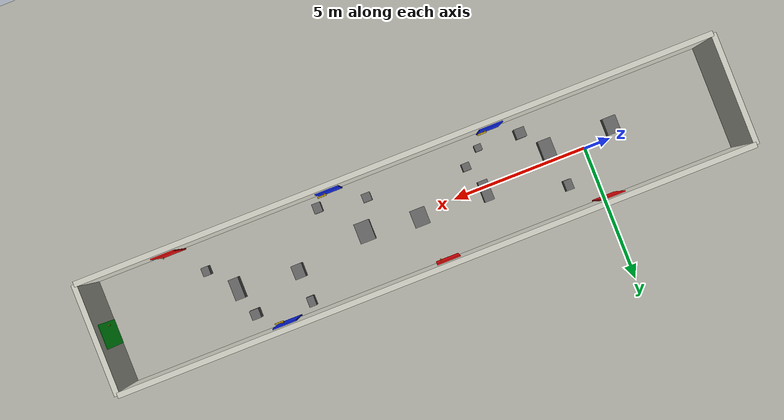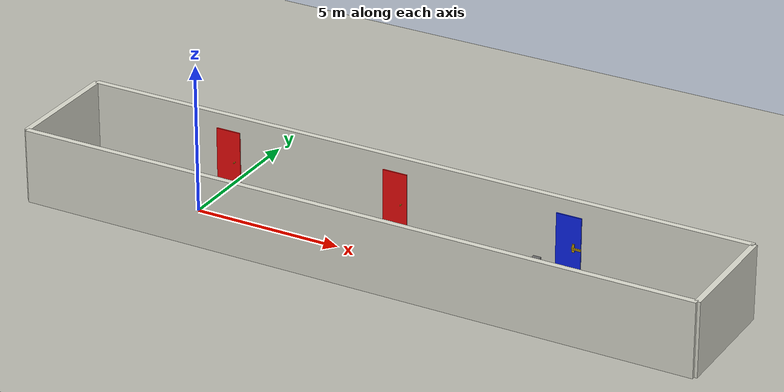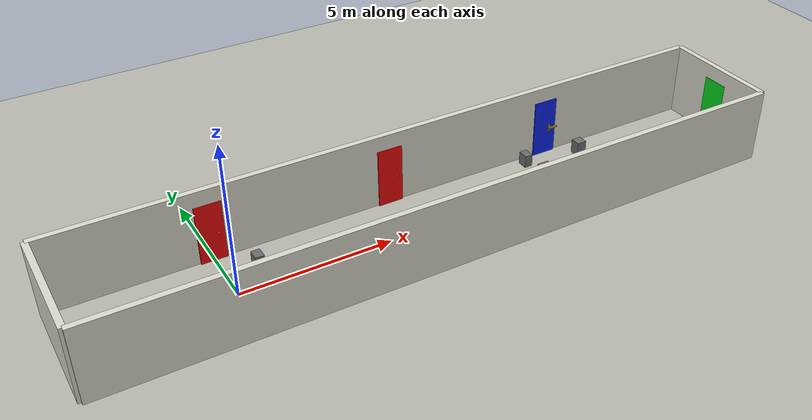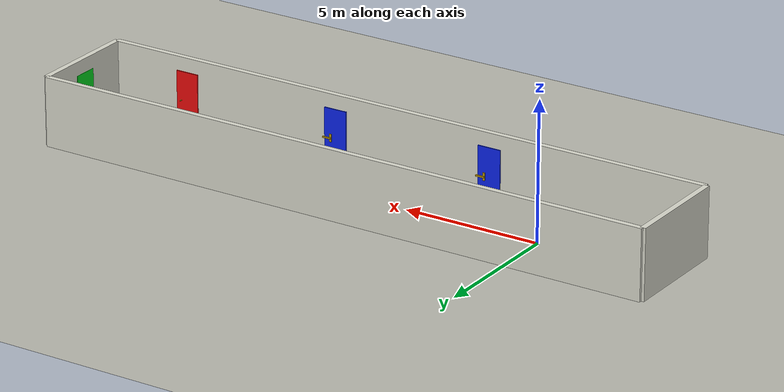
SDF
<?xml version="1.0" ?>
<sdf version="1.6">
  <world name="fire_corridor">
    <physics name="default_physics" type="ode">
      <max_step_size>0.001</max_step_size>
      <real_time_update_rate>1000</real_time_update_rate>
    </physics>
    <plugin name="gz::sim::systems::Physics" filename="gz-sim-physics-system"/>
    <plugin name="gz::sim::systems::UserCommands" filename="gz-sim-user-commands-system"/>
    <plugin name="gz::sim::systems::SceneBroadcaster" filename="gz-sim-scene-broadcaster-system"/>
    <plugin name="gz::sim::systems::Sensors" filename="gz-sim-sensors-system"><render_engine>ogre</render_engine></plugin>
    <light type="directional" name="sun">
      <cast_shadows>true</cast_shadows>
      <pose>6 0 10 0 0 0</pose>
      <diffuse>0.9 0.9 0.9 1</diffuse>
      <specular>0.3 0.3 0.3 1</specular>
      <direction>-0.5 0.1 -1</direction>
    </light>
    <light type="point" name="light_mid">
      <pose>8 0 2.8 0 0 0</pose>
      <diffuse>0.8 0.8 0.8 1</diffuse>
      <specular>0.1 0.1 0.1 1</specular>
      <attenuation><range>16</range><linear>0.05</linear></attenuation>
    </light>

    <model name="ground_plane">
      <static>true</static>
      <link name="link">
        <collision name="col"><geometry><plane><normal>0 0 1</normal><size>30 10</size></plane></geometry></collision>
        <visual name="vis"><geometry><plane><normal>0 0 1</normal><size>30 10</size></plane></geometry>
          <material><ambient>0.72 0.72 0.68 1</ambient><diffuse>0.72 0.72 0.68 1</diffuse></material>
        </visual>
      </link>
    </model>

    <model name="wall_south"><static>true</static><pose>6.5 -2 1.25 0 0 0</pose><link name="link">
      <collision name="col"><geometry><box><size>23 0.2 2.5</size></box></geometry></collision>
      <visual name="vis"><geometry><box><size>23 0.2 2.5</size></box></geometry><material><ambient>0.85 0.85 0.80 1</ambient><diffuse>0.85 0.85 0.80 1</diffuse></material></visual>
    </link></model>
    <model name="wall_north"><static>true</static><pose>6.5 2 1.25 0 0 0</pose><link name="link">
      <collision name="col"><geometry><box><size>23 0.2 2.5</size></box></geometry></collision>
      <visual name="vis"><geometry><box><size>23 0.2 2.5</size></box></geometry><material><ambient>0.85 0.85 0.80 1</ambient><diffuse>0.85 0.85 0.80 1</diffuse></material></visual>
    </link></model>
    <model name="wall_west"><static>true</static><pose>-5 0 1.25 0 0 0</pose><link name="link">
      <collision name="col"><geometry><box><size>0.2 4 2.5</size></box></geometry></collision>
      <visual name="vis"><geometry><box><size>0.2 4 2.5</size></box></geometry><material><ambient>0.85 0.85 0.80 1</ambient><diffuse>0.85 0.85 0.80 1</diffuse></material></visual>
    </link></model>
    <model name="wall_east"><static>true</static><pose>18 0 1.25 0 0 0</pose><link name="link">
      <collision name="col"><geometry><box><size>0.2 4 2.5</size></box></geometry></collision>
      <visual name="vis"><geometry><box><size>0.2 4 2.5</size></box></geometry><material><ambient>0.85 0.85 0.80 1</ambient><diffuse>0.85 0.85 0.80 1</diffuse></material></visual>
    </link></model>

    <model name="door_red1">
      <static>true</static>
      <pose>0.00 1.86 1.0 0 0 0</pose>
      <link name="link">
        <visual name="panel">
          <geometry><box><size>0.85 0.045 2.0</size></box></geometry>
          <material><ambient>0.92 0.04 0.04 1</ambient><diffuse>0.92 0.04 0.04 1</diffuse></material>
        </visual>
      </link>
    </model>
    <model name="handle_red1">
      <static>true</static>
      <pose>0.24 1.82 0.95 1.5708 0 0</pose>
      <link name="link">
        <visual name="handle"><geometry><cylinder><radius>0.018</radius><length>0.13</length></cylinder></geometry><material><ambient>0.75 0.60 0.05 1</ambient><diffuse>0.75 0.60 0.05 1</diffuse></material></visual>
      </link>
    </model>
    <model name="door_blue1">
      <static>false</static>
      <pose>3 -1.86 1 0 0 0</pose>
      <link name="panel">
        <inertial>
          <mass>2.0</mass>
          <inertia>
            <ixx>0.90</ixx><ixy>0</ixy><ixz>0</ixz>
            <iyy>0.90</iyy><iyz>0</iyz><izz>0.12</izz>
          </inertia>
        </inertial>
        <collision name="panel_collision">
          <geometry><box><size>0.85 0.045 2</size></box></geometry>
          <surface>
            <friction><ode><mu>0.8</mu><mu2>0.8</mu2></ode></friction>
          </surface>
        </collision>
        <visual name="panel">
          <geometry><box><size>0.85 0.045 2</size></box></geometry>
          <material><ambient>0.04 0.14 0.92 1</ambient><diffuse>0.04 0.14 0.92 1</diffuse></material>
        </visual>
        <collision name="handle_collision">
<pose>0.3 0.074 -0.05 0 0 0</pose>
<geometry><box><size>0.32 0.07 0.055</size></box></geometry>
        </collision>
        <visual name="handle_backplate">
<pose>0.18 0.032 -0.05 0 0 0</pose>
<geometry><box><size>0.08 0.022 0.28</size></box></geometry>
<material><ambient>0.75 0.60 0.05 1</ambient><diffuse>0.75 0.60 0.05 1</diffuse></material>
        </visual>
        <visual name="handle">
<pose>0.3 0.078 -0.05 0 0 0</pose>
<geometry><box><size>0.32 0.052 0.052</size></box></geometry>
<material><ambient>0.75 0.60 0.05 1</ambient><diffuse>0.75 0.60 0.05 1</diffuse></material>
        </visual>
      </link>
      <joint name="hinge" type="revolute">
        <pose>-0.425 0 0 0 0 0</pose>
        <parent>world</parent>
        <child>panel</child>
        <axis>
          <xyz>0 0 1</xyz>
          <limit><lower>-2.10</lower><upper>2.10</upper><effort>40</effort><velocity>1.5</velocity></limit>
          <dynamics><damping>1.0</damping><friction>0.05</friction></dynamics>
        </axis>
      </joint>
      <plugin filename="ignition-gazebo-joint-position-controller-system"
              name="gz::sim::systems::JointPositionController">
        <joint_name>hinge</joint_name>
        <topic>/fire_robot/door/blue/x300/yn186/sp/cmd</topic>
        <p_gain>8.0</p_gain>
        <d_gain>0.4</d_gain>
        <cmd_max>60</cmd_max>
        <cmd_min>-60</cmd_min>
      </plugin>
    </model>
    <model name="door_red2">
      <static>true</static>
      <pose>6.00 1.86 1.0 0 0 0</pose>
      <link name="link">
        <visual name="panel">
          <geometry><box><size>0.85 0.045 2.0</size></box></geometry>
          <material><ambient>0.92 0.04 0.04 1</ambient><diffuse>0.92 0.04 0.04 1</diffuse></material>
        </visual>
      </link>
    </model>
    <model name="handle_red2">
      <static>true</static>
      <pose>6.24 1.82 0.95 1.5708 0 0</pose>
      <link name="link">
        <visual name="handle"><geometry><cylinder><radius>0.018</radius><length>0.13</length></cylinder></geometry><material><ambient>0.75 0.60 0.05 1</ambient><diffuse>0.75 0.60 0.05 1</diffuse></material></visual>
      </link>
    </model>
    <model name="door_blue2">
      <static>false</static>
      <pose>9 -1.86 1 0 0 0</pose>
      <link name="panel">
        <inertial>
          <mass>2.0</mass>
          <inertia>
            <ixx>0.90</ixx><ixy>0</ixy><ixz>0</ixz>
            <iyy>0.90</iyy><iyz>0</iyz><izz>0.12</izz>
          </inertia>
        </inertial>
        <collision name="panel_collision">
          <geometry><box><size>0.85 0.045 2</size></box></geometry>
          <surface>
            <friction><ode><mu>0.8</mu><mu2>0.8</mu2></ode></friction>
          </surface>
        </collision>
        <visual name="panel">
          <geometry><box><size>0.85 0.045 2</size></box></geometry>
          <material><ambient>0.04 0.14 0.92 1</ambient><diffuse>0.04 0.14 0.92 1</diffuse></material>
        </visual>
        <collision name="handle_collision">
<pose>0.3 0.074 -0.05 0 0 0</pose>
<geometry><box><size>0.32 0.07 0.055</size></box></geometry>
        </collision>
        <visual name="handle_backplate">
<pose>0.18 0.032 -0.05 0 0 0</pose>
<geometry><box><size>0.08 0.022 0.28</size></box></geometry>
<material><ambient>0.75 0.60 0.05 1</ambient><diffuse>0.75 0.60 0.05 1</diffuse></material>
        </visual>
        <visual name="handle">
<pose>0.3 0.078 -0.05 0 0 0</pose>
<geometry><box><size>0.32 0.052 0.052</size></box></geometry>
<material><ambient>0.75 0.60 0.05 1</ambient><diffuse>0.75 0.60 0.05 1</diffuse></material>
        </visual>
      </link>
      <joint name="hinge" type="revolute">
        <pose>-0.425 0 0 0 0 0</pose>
        <parent>world</parent>
        <child>panel</child>
        <axis>
          <xyz>0 0 1</xyz>
          <limit><lower>-2.10</lower><upper>2.10</upper><effort>40</effort><velocity>1.5</velocity></limit>
          <dynamics><damping>1.0</damping><friction>0.05</friction></dynamics>
        </axis>
      </joint>
      <plugin filename="ignition-gazebo-joint-position-controller-system"
              name="gz::sim::systems::JointPositionController">
        <joint_name>hinge</joint_name>
        <topic>/fire_robot/door/blue/x900/yn186/sp/cmd</topic>
        <p_gain>8.0</p_gain>
        <d_gain>0.4</d_gain>
        <cmd_max>60</cmd_max>
        <cmd_min>-60</cmd_min>
      </plugin>
    </model>
    <model name="door_blue3">
      <static>false</static>
      <pose>12 1.86 1 0 0 0</pose>
      <link name="panel">
        <inertial>
          <mass>2.0</mass>
          <inertia>
            <ixx>0.90</ixx><ixy>0</ixy><ixz>0</ixz>
            <iyy>0.90</iyy><iyz>0</iyz><izz>0.12</izz>
          </inertia>
        </inertial>
        <collision name="panel_collision">
          <geometry><box><size>0.85 0.045 2</size></box></geometry>
          <surface>
            <friction><ode><mu>0.8</mu><mu2>0.8</mu2></ode></friction>
          </surface>
        </collision>
        <visual name="panel">
          <geometry><box><size>0.85 0.045 2</size></box></geometry>
          <material><ambient>0.04 0.14 0.92 1</ambient><diffuse>0.04 0.14 0.92 1</diffuse></material>
        </visual>
        <collision name="handle_collision">
<pose>0.3 -0.074 -0.05 0 0 0</pose>
<geometry><box><size>0.32 0.07 0.055</size></box></geometry>
        </collision>
        <visual name="handle_backplate">
<pose>0.18 -0.032 -0.05 0 0 0</pose>
<geometry><box><size>0.08 0.022 0.28</size></box></geometry>
<material><ambient>0.75 0.60 0.05 1</ambient><diffuse>0.75 0.60 0.05 1</diffuse></material>
        </visual>
        <visual name="handle">
<pose>0.3 -0.078 -0.05 0 0 0</pose>
<geometry><box><size>0.32 0.052 0.052</size></box></geometry>
<material><ambient>0.75 0.60 0.05 1</ambient><diffuse>0.75 0.60 0.05 1</diffuse></material>
        </visual>
      </link>
      <joint name="hinge" type="revolute">
        <pose>-0.425 0 0 0 0 0</pose>
        <parent>world</parent>
        <child>panel</child>
        <axis>
          <xyz>0 0 1</xyz>
          <limit><lower>-2.10</lower><upper>2.10</upper><effort>40</effort><velocity>1.5</velocity></limit>
          <dynamics><damping>1.0</damping><friction>0.05</friction></dynamics>
        </axis>
      </joint>
      <plugin filename="ignition-gazebo-joint-position-controller-system"
              name="gz::sim::systems::JointPositionController">
        <joint_name>hinge</joint_name>
        <topic>/fire_robot/door/blue/x1200/yp186/sn/cmd</topic>
        <p_gain>8.0</p_gain>
        <d_gain>0.4</d_gain>
        <cmd_max>60</cmd_max>
        <cmd_min>-60</cmd_min>
      </plugin>
    </model>
    <model name="door_red3">
      <static>true</static>
      <pose>15.00 -1.86 1.0 0 0 0</pose>
      <link name="link">
        <visual name="panel">
          <geometry><box><size>0.85 0.045 2.0</size></box></geometry>
          <material><ambient>0.92 0.04 0.04 1</ambient><diffuse>0.92 0.04 0.04 1</diffuse></material>
        </visual>
      </link>
    </model>
    <model name="handle_red3">
      <static>true</static>
      <pose>15.24 -1.82 0.95 1.5708 0 0</pose>
      <link name="link">
        <visual name="handle"><geometry><cylinder><radius>0.018</radius><length>0.13</length></cylinder></geometry><material><ambient>0.75 0.60 0.05 1</ambient><diffuse>0.75 0.60 0.05 1</diffuse></material></visual>
      </link>
    </model>
    <model name="exit_green">
      <static>true</static>
      <pose>17.92 0 1.0 0 0 0</pose>
      <link name="link">
        <visual name="panel">
          <geometry><box><size>0.06 0.9 2.0</size></box></geometry>
          <material><ambient>0.02 0.85 0.12 1</ambient><diffuse>0.02 0.85 0.12 1</diffuse></material>
        </visual>
      </link>
    </model>
    <model name="handle_exit">
      <static>true</static>
      <pose>17.88 -0.30 0.95 0 1.5708 0</pose>
      <link name="link">
        <visual name="handle"><geometry><cylinder><radius>0.018</radius><length>0.13</length></cylinder></geometry><material><ambient>0.75 0.60 0.05 1</ambient><diffuse>0.75 0.60 0.05 1</diffuse></material></visual>
      </link>
    </model>
    <model name="rand_101_center_00">
      <static>true</static>
      <pose>-1.14 -0.41 0.19 0 0 0</pose>
      <link name="link">
        <collision name="col"><geometry><box><size>0.49 0.62 0.37</size></box></geometry></collision>
        <visual name="vis">
          <geometry><box><size>0.49 0.62 0.37</size></box></geometry>
          <material><ambient>0.42 0.42 0.42 1</ambient><diffuse>0.42 0.42 0.42 1</diffuse></material>
        </visual>
      </link>
    </model>
    <model name="rand_101_center_01">
      <static>true</static>
      <pose>1.30 -0.42 0.22 0 0 0</pose>
      <link name="link">
        <collision name="col"><geometry><box><size>0.48 0.78 0.45</size></box></geometry></collision>
        <visual name="vis">
          <geometry><box><size>0.48 0.78 0.45</size></box></geometry>
          <material><ambient>0.42 0.42 0.42 1</ambient><diffuse>0.42 0.42 0.42 1</diffuse></material>
        </visual>
      </link>
    </model>
    <model name="rand_101_center_02">
      <static>true</static>
      <pose>3.86 0.13 0.23 0 0 0</pose>
      <link name="link">
        <collision name="col"><geometry><box><size>0.36 0.77 0.46</size></box></geometry></collision>
        <visual name="vis">
          <geometry><box><size>0.36 0.77 0.46</size></box></geometry>
          <material><ambient>0.42 0.42 0.42 1</ambient><diffuse>0.42 0.42 0.42 1</diffuse></material>
        </visual>
      </link>
    </model>
    <model name="rand_101_center_03">
      <static>true</static>
      <pose>6.38 0.15 0.19 0 0 0</pose>
      <link name="link">
        <collision name="col"><geometry><box><size>0.56 0.64 0.38</size></box></geometry></collision>
        <visual name="vis">
          <geometry><box><size>0.56 0.64 0.38</size></box></geometry>
          <material><ambient>0.42 0.42 0.42 1</ambient><diffuse>0.42 0.42 0.42 1</diffuse></material>
        </visual>
      </link>
    </model>
    <model name="rand_101_center_04">
      <static>true</static>
      <pose>8.38 -0.09 0.27 0 0 0</pose>
      <link name="link">
        <collision name="col"><geometry><box><size>0.57 0.74 0.53</size></box></geometry></collision>
        <visual name="vis">
          <geometry><box><size>0.57 0.74 0.53</size></box></geometry>
          <material><ambient>0.42 0.42 0.42 1</ambient><diffuse>0.42 0.42 0.42 1</diffuse></material>
        </visual>
      </link>
    </model>
    <model name="rand_101_center_05">
      <static>true</static>
      <pose>11.07 0.36 0.28 0 0 0</pose>
      <link name="link">
        <collision name="col"><geometry><box><size>0.40 0.51 0.55</size></box></geometry></collision>
        <visual name="vis">
          <geometry><box><size>0.40 0.51 0.55</size></box></geometry>
          <material><ambient>0.42 0.42 0.42 1</ambient><diffuse>0.42 0.42 0.42 1</diffuse></material>
        </visual>
      </link>
    </model>
    <model name="rand_101_center_06">
      <static>true</static>
      <pose>13.34 0.14 0.23 0 0 0</pose>
      <link name="link">
        <collision name="col"><geometry><box><size>0.37 0.78 0.46</size></box></geometry></collision>
        <visual name="vis">
          <geometry><box><size>0.37 0.78 0.46</size></box></geometry>
          <material><ambient>0.42 0.42 0.42 1</ambient><diffuse>0.42 0.42 0.42 1</diffuse></material>
        </visual>
      </link>
    </model>
    <model name="rand_101_blue_clutter_0_0">
      <static>true</static>
      <pose>3.56 -1.39 0.19 0 0 0</pose>
      <link name="link">
        <collision name="col"><geometry><box><size>0.26 0.24 0.37</size></box></geometry></collision>
        <visual name="vis">
          <geometry><box><size>0.26 0.24 0.37</size></box></geometry>
          <material><ambient>0.42 0.42 0.42 1</ambient><diffuse>0.42 0.42 0.42 1</diffuse></material>
        </visual>
      </link>
    </model>
    <model name="rand_101_blue_clutter_0_1">
      <static>true</static>
      <pose>1.99 -1.33 0.25 0 0 0</pose>
      <link name="link">
        <collision name="col"><geometry><box><size>0.38 0.36 0.50</size></box></geometry></collision>
        <visual name="vis">
          <geometry><box><size>0.38 0.36 0.50</size></box></geometry>
          <material><ambient>0.42 0.42 0.42 1</ambient><diffuse>0.42 0.42 0.42 1</diffuse></material>
        </visual>
      </link>
    </model>
    <model name="rand_101_blue_clutter_1_0">
      <static>true</static>
      <pose>9.65 -1.49 0.19 0 0 0</pose>
      <link name="link">
        <collision name="col"><geometry><box><size>0.31 0.36 0.37</size></box></geometry></collision>
        <visual name="vis">
          <geometry><box><size>0.31 0.36 0.37</size></box></geometry>
          <material><ambient>0.42 0.42 0.42 1</ambient><diffuse>0.42 0.42 0.42 1</diffuse></material>
        </visual>
      </link>
    </model>
    <model name="rand_101_blue_clutter_1_1">
      <static>true</static>
      <pose>7.88 -1.20 0.23 0 0 0</pose>
      <link name="link">
        <collision name="col"><geometry><box><size>0.32 0.31 0.47</size></box></geometry></collision>
        <visual name="vis">
          <geometry><box><size>0.32 0.31 0.47</size></box></geometry>
          <material><ambient>0.42 0.42 0.42 1</ambient><diffuse>0.42 0.42 0.42 1</diffuse></material>
        </visual>
      </link>
    </model>
    <model name="rand_101_blue_clutter_2_0">
      <static>true</static>
      <pose>13.05 1.22 0.24 0 0 0</pose>
      <link name="link">
        <collision name="col"><geometry><box><size>0.34 0.35 0.49</size></box></geometry></collision>
        <visual name="vis">
          <geometry><box><size>0.34 0.35 0.49</size></box></geometry>
          <material><ambient>0.42 0.42 0.42 1</ambient><diffuse>0.42 0.42 0.42 1</diffuse></material>
        </visual>
      </link>
    </model>
    <model name="rand_101_blue_clutter_2_1">
      <static>true</static>
      <pose>11.04 1.52 0.22 0 0 0</pose>
      <link name="link">
        <collision name="col"><geometry><box><size>0.27 0.37 0.44</size></box></geometry></collision>
        <visual name="vis">
          <geometry><box><size>0.27 0.37 0.44</size></box></geometry>
          <material><ambient>0.42 0.42 0.42 1</ambient><diffuse>0.42 0.42 0.42 1</diffuse></material>
        </visual>
      </link>
    </model>
    <model name="rand_101_side_00">
      <static>true</static>
      <pose>14.14 -0.84 0.21 0 0 0</pose>
      <link name="link">
        <collision name="col"><geometry><box><size>0.28 0.32 0.41</size></box></geometry></collision>
        <visual name="vis">
          <geometry><box><size>0.28 0.32 0.41</size></box></geometry>
          <material><ambient>0.42 0.42 0.42 1</ambient><diffuse>0.42 0.42 0.42 1</diffuse></material>
        </visual>
      </link>
    </model>
    <model name="rand_101_side_01">
      <static>true</static>
      <pose>1.05 1.01 0.20 0 0 0</pose>
      <link name="link">
        <collision name="col"><geometry><box><size>0.29 0.38 0.40</size></box></geometry></collision>
        <visual name="vis">
          <geometry><box><size>0.29 0.38 0.40</size></box></geometry>
          <material><ambient>0.42 0.42 0.42 1</ambient><diffuse>0.42 0.42 0.42 1</diffuse></material>
        </visual>
      </link>
    </model>
    <model name="rand_101_side_02">
      <static>true</static>
      <pose>4.21 -0.91 0.28 0 0 0</pose>
      <link name="link">
        <collision name="col"><geometry><box><size>0.29 0.28 0.56</size></box></geometry></collision>
        <visual name="vis">
          <geometry><box><size>0.29 0.28 0.56</size></box></geometry>
          <material><ambient>0.42 0.42 0.42 1</ambient><diffuse>0.42 0.42 0.42 1</diffuse></material>
        </visual>
      </link>
    </model>
  </world>
</sdf>
